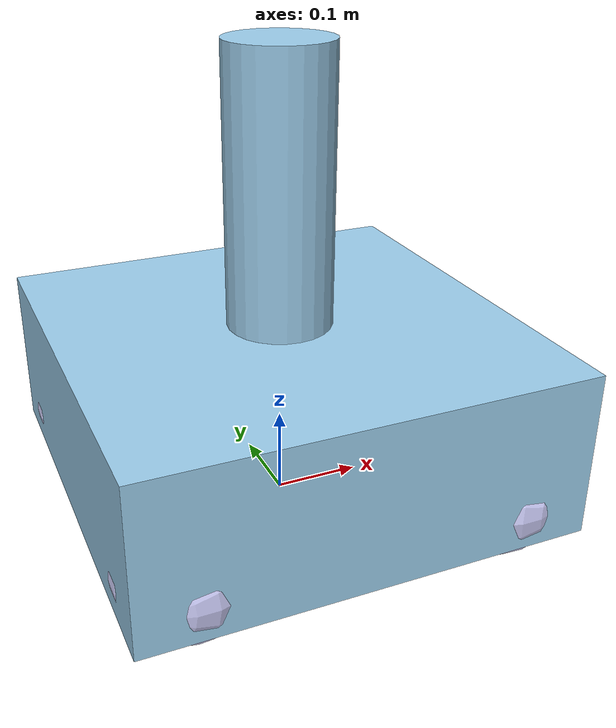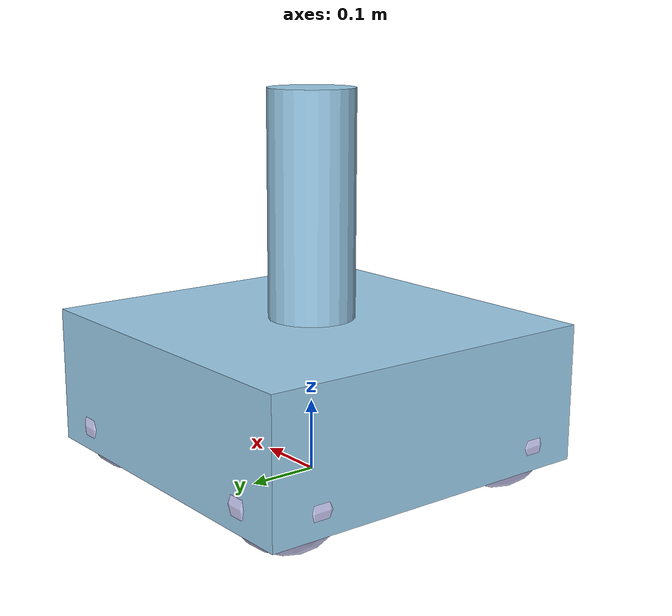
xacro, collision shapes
<?xml version="1.0"?>
<robot name="omni_robot" xmlns:xacro="http://www.ros.org/wiki/xacro">

  <xacro:arg name="lidar_hz" default="50"/>
  <xacro:arg name="lidar_h_samples" default="360"/>
  <xacro:arg name="lidar_v_samples" default="32"/>

  <xacro:include filename="$(find omni_sim_description)/urdf/chassis.urdf.xacro"/>

  <xacro:property name="lidar_tilt" value="${-25.0 * pi / 180.0}"/>
  <xacro:property name="lidar_z" value="0.2752"/>

  <xacro:macro name="mid360" params="frame topic x y yaw">
    <link name="${frame}"/>
    <joint name="base_link_to_${frame}" type="fixed">
      <parent link="base_link"/>
      <child link="${frame}"/>
      <origin xyz="${x} ${y} ${lidar_z}" rpy="0 ${lidar_tilt} ${yaw}"/>
    </joint>
    <gazebo reference="${frame}">
      <sensor name="${frame}_sensor" type="gpu_lidar">
        <topic>${topic}</topic>
        <gz_frame_id>${frame}</gz_frame_id>
        <update_rate>$(arg lidar_hz)</update_rate>
        <always_on>true</always_on>
        <visualize>false</visualize>
        <lidar>
          <scan>
            <horizontal>
              <samples>$(arg lidar_h_samples)</samples>
              <resolution>1</resolution>
              <min_angle>${-pi}</min_angle>
              <max_angle>${pi}</max_angle>
            </horizontal>
            <vertical>
              <samples>$(arg lidar_v_samples)</samples>
              <resolution>1</resolution>
              <min_angle>${-7.0 * pi / 180.0}</min_angle>
              <max_angle>${52.0 * pi / 180.0}</max_angle>
            </vertical>
          </scan>
          <range>
            <min>0.1</min>
            <max>40.0</max>
            <resolution>0.002</resolution>
          </range>
          <noise>
            <type>gaussian</type>
            <mean>0.0</mean>
            <stddev>0.015</stddev>
          </noise>
        </lidar>
      </sensor>
    </gazebo>
  </xacro:macro>

  <xacro:mid360 frame="livox_frame"   topic="/gz/livox_front_right" x="0.1435"  y="-0.1437" yaw="${0.75 * pi}"/>
  <xacro:mid360 frame="livox_frame_2" topic="/gz/livox_back_left"   x="-0.1435" y="0.1437"  yaw="${-0.25 * pi}"/>

  <!-- Mid360 内置 IMU (Livox 官方内部外参, 与 nav_ws 一致). 输出 m/s^2 (真机驱动输出 g) -->
  <link name="imu_link"/>
  <joint name="livox_to_imu" type="fixed">
    <parent link="livox_frame"/>
    <child link="imu_link"/>
    <origin xyz="0.011 0.02329 -0.04412" rpy="0 0 0"/>
  </joint>
  <gazebo reference="imu_link">
    <sensor name="mid360_imu" type="imu">
      <topic>/gz/livox_imu</topic>
      <gz_frame_id>imu_link</gz_frame_id>
      <update_rate>200</update_rate>
      <always_on>true</always_on>
      <imu>
        <angular_velocity>
          <x><noise type="gaussian"><mean>0</mean><stddev>0.002</stddev><bias_mean>0.0005</bias_mean><bias_stddev>0.0001</bias_stddev></noise></x>
          <y><noise type="gaussian"><mean>0</mean><stddev>0.002</stddev><bias_mean>0.0005</bias_mean><bias_stddev>0.0001</bias_stddev></noise></y>
          <z><noise type="gaussian"><mean>0</mean><stddev>0.002</stddev><bias_mean>0.0005</bias_mean><bias_stddev>0.0001</bias_stddev></noise></z>
        </angular_velocity>
        <linear_acceleration>
          <x><noise type="gaussian"><mean>0</mean><stddev>0.02</stddev><bias_mean>0.01</bias_mean><bias_stddev>0.001</bias_stddev></noise></x>
          <y><noise type="gaussian"><mean>0</mean><stddev>0.02</stddev><bias_mean>0.01</bias_mean><bias_stddev>0.001</bias_stddev></noise></y>
          <z><noise type="gaussian"><mean>0</mean><stddev>0.02</stddev><bias_mean>0.01</bias_mean><bias_stddev>0.001</bias_stddev></noise></z>
        </linear_acceleration>
      </imu>
    </sensor>
  </gazebo>

  <gazebo>
    <!-- 理想全向运动: 直接给底盘 body 速度 (vx, vy, wz). 轮速逆解见 hospital_sim/omni_wheel_kinematics.py -->
    <plugin filename="gz-sim-velocity-control-system" name="gz::sim::systems::VelocityControl">
      <topic>/gz/cmd_vel</topic>
    </plugin>
    <!-- 真值: world -> base_link, 用于评估 Point-LIO / 重定位误差 -->
    <plugin filename="gz-sim-odometry-publisher-system" name="gz::sim::systems::OdometryPublisher">
      <odom_frame>world</odom_frame>
      <robot_base_frame>base_link</robot_base_frame>
      <dimensions>3</dimensions>
      <odom_publish_frequency>50</odom_publish_frequency>
      <odom_topic>/gz/ground_truth</odom_topic>
      <tf_topic>/gz/ground_truth_tf</tf_topic>
    </plugin>
  </gazebo>

</robot>

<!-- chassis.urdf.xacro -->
<!-- AUTO-GENERATED by scripts/make_sim_chassis.py from nav_ws chassis.urdf -->
<robot xmlns:xacro="http://www.ros.org/wiki/xacro">
  <link name="base_link" />
  <joint name="base_joint" type="fixed">
    <origin xyz="0 0 0" rpy="0 0 3.141592653589793" />
    <parent link="base_link" />
    <child link="updownbase_urdf_asm" />
  </joint>
  <link name="updownbase_urdf_asm">
    <inertial>
      <origin xyz="-0.000723001 0.022141 0.146804" rpy="0 0 0" />
      <mass value="21.8643" />
      <inertia ixx="0.474266" ixy="0.0117404" ixz="-0.000542174" iyy="0.48894" iyz="0.00745325" izz="0.50382" />
    </inertial>
    <visual>
      <origin xyz="-0.00121192 0.000883883 -0.0167724" rpy="-5.01545e-45 -0 1.72499e-30" />
      <geometry>
        <mesh filename="package://omni_sim_description/meshes/4005.stl" />
      </geometry>
      <material name="4005_material">
        <color rgba="0.615686 0.811765 0.929412 1" />
      </material>
    </visual>
    <visual>
      <origin xyz="-1.47931e-11 -3.97571e-12 -0.0167724" rpy="-5.01545e-45 -0 1.72499e-30" />
      <geometry>
        <mesh filename="package://omni_sim_description/meshes/ultrasonic.stl" />
      </geometry>
      <material name="ultrasonic_material">
        <color rgba="0.768627 0.886275 0.952941 1" />
      </material>
    </visual>
    <visual>
      <origin xyz="-0.00121192 0.000883883 -0.0167724" rpy="-5.01545e-45 -0 1.72499e-30" />
      <geometry>
        <mesh filename="package://omni_sim_description/meshes/rs02.stl" />
      </geometry>
      <material name="rs02_material">
        <color rgba="0.301961 0.290196 0.262745 1" />
      </material>
    </visual>
    <visual>
      <origin xyz="-1.4793e-11 1.60544e-11 -0.0167724" rpy="8.68144e-11 -1.79174e-21 4.12774e-11" />
      <geometry>
        <mesh filename="package://omni_sim_description/meshes/batt_s_d.stl" />
      </geometry>
      <material name="batt_s_d_material">
        <color rgba="1 0.756863 0.054902 1" />
      </material>
    </visual>
    <visual>
      <origin xyz="-0.00121192 0.000883883 -0.0167724" rpy="-5.01545e-45 -0 1.72499e-30" />
      <geometry>
        <mesh filename="package://omni_sim_description/meshes/rs02__2.stl" />
      </geometry>
      <material name="rs02_2_material">
        <color rgba="0.301961 0.290196 0.262745 1" />
      </material>
    </visual>
    <visual>
      <origin xyz="-0.00121192 0.000883883 -0.0167724" rpy="-5.01545e-45 -0 1.72499e-30" />
      <geometry>
        <mesh filename="package://omni_sim_description/meshes/wheel_mot_con.stl" />
      </geometry>
      <material name="wheel_mot_con_material">
        <color rgba="0.768627 0.886275 0.952941 1" />
      </material>
    </visual>
    <visual>
      <origin xyz="-1.47932e-11 -3.97571e-12 -0.0169724" rpy="2.32171e-32 -0 2.77556e-17" />
      <geometry>
        <mesh filename="package://omni_sim_description/meshes/ld_b.stl" />
      </geometry>
      <material name="ld_b_material">
        <color rgba="0.917647 0.917647 0.917647 1" />
      </material>
    </visual>
    <visual>
      <origin xyz="-1.47944e-11 -3.97626e-12 -0.0169724" rpy="-9.26342e-16 8.88178e-16 2.63678e-16" />
      <geometry>
        <mesh filename="package://omni_sim_description/meshes/mid_360.stl" />
      </geometry>
      <material name="mid_360_material">
        <color rgba="0.768627 0.886275 0.952941 1" />
      </material>
    </visual>
    <visual>
      <origin xyz="-0.00121192 0.000883883 -0.0167724" rpy="-5.01545e-45 -0 1.72499e-30" />
      <geometry>
        <mesh filename="package://omni_sim_description/meshes/wheel_mot_stop.stl" />
      </geometry>
      <material name="wheel_mot_stop_material">
        <color rgba="0.615686 0.811765 0.929412 1" />
      </material>
    </visual>
    <visual>
      <origin xyz="-1.4793e-11 -3.97582e-12 -0.0167724" rpy="-1.06254e-31 -0 3.44509e-16" />
      <geometry>
        <mesh filename="package://omni_sim_description/meshes/ultrasonic__2.stl" />
      </geometry>
      <material name="ultrasonic_2_material">
        <color rgba="0.768627 0.886275 0.952941 1" />
      </material>
    </visual>
    <visual>
      <origin xyz="-0.00121192 0.000883883 -0.0167724" rpy="-5.01545e-45 -0 1.72499e-30" />
      <geometry>
        <mesh filename="package://omni_sim_description/meshes/wheel_mot_back.stl" />
      </geometry>
      <material name="wheel_mot_back_material">
        <color rgba="0.615686 0.811765 0.929412 1" />
      </material>
    </visual>
    <visual>
      <origin xyz="-0.00121192 0.000883883 -0.0167724" rpy="-5.01545e-45 -0 1.72499e-30" />
      <geometry>
        <mesh filename="package://omni_sim_description/meshes/wheel_mot_back__2.stl" />
      </geometry>
      <material name="wheel_mot_back_2_material">
        <color rgba="0.615686 0.811765 0.929412 1" />
      </material>
    </visual>
    <visual>
      <origin xyz="-1.47931e-11 -3.97571e-12 -0.0167724" rpy="-5.01545e-45 -0 1.72499e-30" />
      <geometry>
        <mesh filename="package://omni_sim_description/meshes/cahssis_s_d.stl" />
      </geometry>
      <material name="cahssis_s_d_material">
        <color rgba="0.87451 0.87451 0.87451 1" />
      </material>
    </visual>
    <visual>
      <origin xyz="-0.00121192 0.000883883 -0.0167724" rpy="-5.01545e-45 -0 1.72499e-30" />
      <geometry>
        <mesh filename="package://omni_sim_description/meshes/wheel_mot_base.stl" />
      </geometry>
      <material name="wheel_mot_base_material">
        <color rgba="0.615686 0.811765 0.929412 1" />
      </material>
    </visual>
    <visual>
      <origin xyz="-1.47932e-11 -3.97582e-12 -0.0169724" rpy="-5.01545e-45 -0 1.72499e-30" />
      <geometry>
        <mesh filename="package://omni_sim_description/meshes/cahssis_s_u.stl" />
      </geometry>
      <material name="cahssis_s_u_material">
        <color rgba="0.87451 0.87451 0.87451 1" />
      </material>
    </visual>
    <visual>
      <origin xyz="-0.00121192 0.000883883 -0.0167724" rpy="-5.01545e-45 -0 1.72499e-30" />
      <geometry>
        <mesh filename="package://omni_sim_description/meshes/wheel_mot_drv.stl" />
      </geometry>
      <material name="wheel_mot_drv_material">
        <color rgba="0.498039 0.498039 0.498039 1" />
      </material>
    </visual>
    <visual>
      <origin xyz="-0.00121192 0.000883883 -0.0167724" rpy="-5.01545e-45 -0 1.72499e-30" />
      <geometry>
        <mesh filename="package://omni_sim_description/meshes/wheel_mot_back__3.stl" />
      </geometry>
      <material name="wheel_mot_back_3_material">
        <color rgba="0.615686 0.811765 0.929412 1" />
      </material>
    </visual>
    <visual>
      <origin xyz="-0.00121192 0.000883883 -0.0167724" rpy="-5.01545e-45 -0 1.72499e-30" />
      <geometry>
        <mesh filename="package://omni_sim_description/meshes/rs02__3.stl" />
      </geometry>
      <material name="rs02_3_material">
        <color rgba="0.301961 0.290196 0.262745 1" />
      </material>
    </visual>
    <visual>
      <origin xyz="-0.00121192 0.000883883 -0.0167724" rpy="-5.01545e-45 -0 1.72499e-30" />
      <geometry>
        <mesh filename="package://omni_sim_description/meshes/wheel_mot_back__4.stl" />
      </geometry>
      <material name="wheel_mot_back_4_material">
        <color rgba="0.615686 0.811765 0.929412 1" />
      </material>
    </visual>
    <visual>
      <origin xyz="-0.00121192 0.000883883 -0.0167724" rpy="-5.01545e-45 -0 1.72499e-30" />
      <geometry>
        <mesh filename="package://omni_sim_description/meshes/wheel_mot_drv__2.stl" />
      </geometry>
      <material name="wheel_mot_drv_2_material">
        <color rgba="0.498039 0.498039 0.498039 1" />
      </material>
    </visual>
    <visual>
      <origin xyz="-0.00121192 0.000883883 -0.0167724" rpy="-5.01545e-45 -0 1.72499e-30" />
      <geometry>
        <mesh filename="package://omni_sim_description/meshes/batt_sm_r.stl" />
      </geometry>
      <material name="batt_sm_r_material">
        <color rgba="0.917647 0.917647 0.917647 1" />
      </material>
    </visual>
    <visual>
      <origin xyz="-1.76671e-11 6.07492e-12 -0.0167724" rpy="4.37526e-11 7.12765e-24 -2.06389e-11" />
      <geometry>
        <mesh filename="package://omni_sim_description/meshes/batt_s_d__2.stl" />
      </geometry>
      <material name="batt_s_d_2_material">
        <color rgba="1 0.756863 0.054902 1" />
      </material>
    </visual>
    <visual>
      <origin xyz="-0.00121192 0.000883883 -0.0167724" rpy="-5.01545e-45 -0 1.72499e-30" />
      <geometry>
        <mesh filename="package://omni_sim_description/meshes/wheel_mot_base__2.stl" />
      </geometry>
      <material name="wheel_mot_base_2_material">
        <color rgba="0.615686 0.811765 0.929412 1" />
      </material>
    </visual>
    <visual>
      <origin xyz="-1.47933e-11 -3.97571e-12 -0.0169724" rpy="2.32171e-32 -0 2.77556e-17" />
      <geometry>
        <mesh filename="package://omni_sim_description/meshes/mid_360__2.stl" />
      </geometry>
      <material name="mid_360_2_material">
        <color rgba="0.768627 0.886275 0.952941 1" />
      </material>
    </visual>
    <visual>
      <origin xyz="-0.00121192 0.000883883 -0.0167724" rpy="-5.01545e-45 -0 1.72499e-30" />
      <geometry>
        <mesh filename="package://omni_sim_description/meshes/rs02__4.stl" />
      </geometry>
      <material name="rs02_4_material">
        <color rgba="0.301961 0.290196 0.262745 1" />
      </material>
    </visual>
    <visual>
      <origin xyz="-0.00121192 0.000883883 -0.0167724" rpy="-5.01545e-45 -0 1.72499e-30" />
      <geometry>
        <mesh filename="package://omni_sim_description/meshes/wheel_mot_stop__2.stl" />
      </geometry>
      <material name="wheel_mot_stop_2_material">
        <color rgba="0.615686 0.811765 0.929412 1" />
      </material>
    </visual>
    <visual>
      <origin xyz="-0.00121192 -0.00411612 -0.0197724" rpy="-2.07752e-16 -3.02916e-17 1.71917e-30" />
      <geometry>
        <mesh filename="package://omni_sim_description/meshes/motor.stl" />
      </geometry>
      <material name="motor_material">
        <color rgba="0.615686 0.811765 0.929412 1" />
      </material>
    </visual>
    <visual>
      <origin xyz="-1.4793e-11 -3.97582e-12 -0.0167724" rpy="-1.6226e-31 -0 2.77556e-16" />
      <geometry>
        <mesh filename="package://omni_sim_description/meshes/ultrasonic__3.stl" />
      </geometry>
      <material name="ultrasonic_3_material">
        <color rgba="0.768627 0.886275 0.952941 1" />
      </material>
    </visual>
    <visual>
      <origin xyz="-1.4793e-11 -3.97582e-12 -0.0167724" rpy="-1.6226e-31 -0 2.77556e-16" />
      <geometry>
        <mesh filename="package://omni_sim_description/meshes/ultrasonic__4.stl" />
      </geometry>
      <material name="ultrasonic_4_material">
        <color rgba="0.768627 0.886275 0.952941 1" />
      </material>
    </visual>
    <visual>
      <origin xyz="-0.00121192 0.000883883 -0.0167724" rpy="-5.01545e-45 -0 1.72499e-30" />
      <geometry>
        <mesh filename="package://omni_sim_description/meshes/wheel_mot_con__2.stl" />
      </geometry>
      <material name="wheel_mot_con_2_material">
        <color rgba="0.768627 0.886275 0.952941 1" />
      </material>
    </visual>
    <visual>
      <origin xyz="0.222567 0.64821 -0.294546" rpy="-2.13708e-17 2.90753e-15 1.66285e-30" />
      <geometry>
        <mesh filename="package://omni_sim_description/meshes/njtc01_t002_mid_tube.stl" />
      </geometry>
      <material name="njtc01_t002_mid_tube_material">
        <color rgba="0.792157 0.819608 0.933333 1" />
      </material>
    </visual>
    <visual>
      <origin xyz="-0.00121192 0.000883883 -0.0167724" rpy="-5.01545e-45 -0 1.72499e-30" />
      <geometry>
        <mesh filename="package://omni_sim_description/meshes/4005__2.stl" />
      </geometry>
      <material name="4005_2_material">
        <color rgba="0.615686 0.811765 0.929412 1" />
      </material>
    </visual>
    <visual>
      <origin xyz="-0.00121192 0.000883883 -0.0167724" rpy="-5.01545e-45 -0 1.72499e-30" />
      <geometry>
        <mesh filename="package://omni_sim_description/meshes/chassis_base.stl" />
      </geometry>
      <material name="chassis_base_material">
        <color rgba="0.615686 0.811765 0.929412 1" />
      </material>
    </visual>
    <visual>
      <origin xyz="-1.4793e-11 -3.9756e-12 -0.0167724" rpy="-5.01545e-45 -0 1.72499e-30" />
      <geometry>
        <mesh filename="package://omni_sim_description/meshes/ultrasonic__5.stl" />
      </geometry>
      <material name="ultrasonic_5_material">
        <color rgba="0.768627 0.886275 0.952941 1" />
      </material>
    </visual>
    <visual>
      <origin xyz="-0.00121192 0.000883883 -0.0167724" rpy="-5.01545e-45 -0 1.72499e-30" />
      <geometry>
        <mesh filename="package://omni_sim_description/meshes/wheel_mot_con__3.stl" />
      </geometry>
      <material name="wheel_mot_con_3_material">
        <color rgba="0.768627 0.886275 0.952941 1" />
      </material>
    </visual>
    <visual>
      <origin xyz="-0.00121192 0.000883883 -0.0167724" rpy="-5.01545e-45 -0 1.72499e-30" />
      <geometry>
        <mesh filename="package://omni_sim_description/meshes/4005__3.stl" />
      </geometry>
      <material name="4005_3_material">
        <color rgba="0.615686 0.811765 0.929412 1" />
      </material>
    </visual>
    <visual>
      <origin xyz="-0.00121192 0.000883883 -0.0167724" rpy="-5.01545e-45 -0 1.72499e-30" />
      <geometry>
        <mesh filename="package://omni_sim_description/meshes/wheel_mot_stop__3.stl" />
      </geometry>
      <material name="wheel_mot_stop_3_material">
        <color rgba="0.615686 0.811765 0.929412 1" />
      </material>
    </visual>
    <visual>
      <origin xyz="-0.00121192 0.000883883 -0.0167724" rpy="-5.01545e-45 -0 1.72499e-30" />
      <geometry>
        <mesh filename="package://omni_sim_description/meshes/wheel_mot_base__3.stl" />
      </geometry>
      <material name="wheel_mot_base_3_material">
        <color rgba="0.615686 0.811765 0.929412 1" />
      </material>
    </visual>
    <visual>
      <origin xyz="-0.00121192 0.000883883 -0.0152724" rpy="-5.01545e-45 -0 1.72499e-30" />
      <geometry>
        <mesh filename="package://omni_sim_description/meshes/chassis_b.stl" />
      </geometry>
      <material name="chassis_b_material">
        <color rgba="0.298039 0.298039 0.298039 1" />
      </material>
    </visual>
    <visual>
      <origin xyz="-1.7667e-11 6.07492e-12 -0.0167724" rpy="4.37526e-11 7.12765e-24 -2.06389e-11" />
      <geometry>
        <mesh filename="package://omni_sim_description/meshes/batt_s_u.stl" />
      </geometry>
      <material name="batt_s_u_material">
        <color rgba="0.615686 0.811765 0.929412 1" />
      </material>
    </visual>
    <visual>
      <origin xyz="-0.00121192 0.000883883 -0.0167724" rpy="-5.01545e-45 -0 1.72499e-30" />
      <geometry>
        <mesh filename="package://omni_sim_description/meshes/wheel_mot_drv__3.stl" />
      </geometry>
      <material name="wheel_mot_drv_3_material">
        <color rgba="0.498039 0.498039 0.498039 1" />
      </material>
    </visual>
    <visual>
      <origin xyz="-0.00121192 0.000883883 -0.0167724" rpy="-5.01545e-45 -0 1.72499e-30" />
      <geometry>
        <mesh filename="package://omni_sim_description/meshes/wheel_mot_con__4.stl" />
      </geometry>
      <material name="wheel_mot_con_4_material">
        <color rgba="0.768627 0.886275 0.952941 1" />
      </material>
    </visual>
    <visual>
      <origin xyz="-1.47931e-11 1.60544e-11 -0.0167724" rpy="8.68144e-11 -1.79174e-21 4.12774e-11" />
      <geometry>
        <mesh filename="package://omni_sim_description/meshes/batt_s_u__2.stl" />
      </geometry>
      <material name="batt_s_u_2_material">
        <color rgba="0.615686 0.811765 0.929412 1" />
      </material>
    </visual>
    <visual>
      <origin xyz="-0.00121192 0.000883883 -0.0167724" rpy="-5.01545e-45 -0 1.72499e-30" />
      <geometry>
        <mesh filename="package://omni_sim_description/meshes/batt_sm_l.stl" />
      </geometry>
      <material name="batt_sm_l_material">
        <color rgba="0.917647 0.917647 0.917647 1" />
      </material>
    </visual>
    <visual>
      <origin xyz="-0.00121192 0.000883883 -0.0167724" rpy="-5.01545e-45 -0 1.72499e-30" />
      <geometry>
        <mesh filename="package://omni_sim_description/meshes/wheel_mot_base__4.stl" />
      </geometry>
      <material name="wheel_mot_base_4_material">
        <color rgba="0.615686 0.811765 0.929412 1" />
      </material>
    </visual>
    <visual>
      <origin xyz="-0.00121192 0.000883883 -0.0167724" rpy="-5.01545e-45 -0 1.72499e-30" />
      <geometry>
        <mesh filename="package://omni_sim_description/meshes/4005__4.stl" />
      </geometry>
      <material name="4005_4_material">
        <color rgba="0.615686 0.811765 0.929412 1" />
      </material>
    </visual>
    <visual>
      <origin xyz="-0.00121192 0.000883883 -0.0167724" rpy="-5.01545e-45 -0 1.72499e-30" />
      <geometry>
        <mesh filename="package://omni_sim_description/meshes/wheel_mot_stop__4.stl" />
      </geometry>
      <material name="wheel_mot_stop_4_material">
        <color rgba="0.615686 0.811765 0.929412 1" />
      </material>
    </visual>
    <visual>
      <origin xyz="-1.47932e-11 -3.97582e-12 -0.0169724" rpy="-1.63064e-16 5.55112e-17 5.55112e-17" />
      <geometry>
        <mesh filename="package://omni_sim_description/meshes/ld_b__2.stl" />
      </geometry>
      <material name="ld_b_2_material">
        <color rgba="0.917647 0.917647 0.917647 1" />
      </material>
    </visual>
    <visual>
      <origin xyz="-1.4793e-11 -3.97571e-12 -0.0167724" rpy="-8.3297e-32 -0 -9.95799e-17" />
      <geometry>
        <mesh filename="package://omni_sim_description/meshes/ultrasonic__6.stl" />
      </geometry>
      <material name="ultrasonic_6_material">
        <color rgba="0.768627 0.886275 0.952941 1" />
      </material>
    </visual>
    <visual>
      <origin xyz="0.222567 0.64821 0.010454" rpy="-6.45838e-45 -0 1.72499e-30" />
      <geometry>
        <mesh filename="package://omni_sim_description/meshes/njtc01_t003_outer_tube.stl" />
      </geometry>
      <material name="njtc01_t003_outer_tube_material">
        <color rgba="0.792157 0.819608 0.933333 1" />
      </material>
    </visual>
    <visual>
      <origin xyz="-0.00121192 0.000883883 -0.0167724" rpy="-5.01545e-45 -0 1.72499e-30" />
      <geometry>
        <mesh filename="package://omni_sim_description/meshes/wheel_mot_drv__4.stl" />
      </geometry>
      <material name="wheel_mot_drv_4_material">
        <color rgba="0.498039 0.498039 0.498039 1" />
      </material>
    </visual>
    <collision name="chassis_box">
      <origin xyz="0 0 0.125" />
      <geometry>
        <box size="0.50 0.50 0.19" />
      </geometry>
    </collision>
    <collision name="pole">
      <origin xyz="0 0 0.33" />
      <geometry>
        <cylinder radius="0.06" length="0.40" />
      </geometry>
    </collision>
  </link>
  <link name="ow150_sk_tt_l_00_omni6in_ad">
    <inertial>
      <origin xyz="-1.54992e-07 -3.552e-08 0.0021919" rpy="0 0 0" />
      <mass value="0.9" />
      <inertia ixx="0.00150934" ixy="-6.21923e-09" ixz="2.67456e-10" iyy="0.00150933" iyz="-8.66274e-10" izz="0.00281989" />
    </inertial>
    <visual>
      <origin xyz="5.32614e-17 -4.16334e-17 0.0159986" rpy="-1.5708 -1.01465e-17 4.09935e-15" />
      <geometry>
        <mesh filename="package://omni_sim_description/meshes/ow150_sk_tt_l_00_omni6in_ad.stl" />
      </geometry>
      <material name="ow150_sk_tt_l_00_omni6in_ad_material">
        <color rgba="0.823529 0.823529 1 1" />
      </material>
    </visual>
    <collision name="wheel">
      <geometry>
        <sphere radius="0.075" />
      </geometry>
    </collision>
  </link>
  <joint name="wheel_rear_left" type="continuous">
    <origin xyz="0.177071 -0.177399 0.0632276" rpy="1.5708 3.54646e-45 0.785398" />
    <parent link="updownbase_urdf_asm" />
    <child link="ow150_sk_tt_l_00_omni6in_ad" />
    <axis xyz="0 0 1" />
    <limit effort="10" velocity="10" />
  </joint>
  <link name="ow150_sk_tt_l_00_omni6in_ad_2">
    <inertial>
      <origin xyz="-1.54992e-07 -3.552e-08 0.0021919" rpy="0 0 0" />
      <mass value="0.9" />
      <inertia ixx="0.00150934" ixy="-6.21923e-09" ixz="2.67456e-10" iyy="0.00150933" iyz="-8.66274e-10" izz="0.00281989" />
    </inertial>
    <visual>
      <origin xyz="-2.14672e-17 0 0.0159986" rpy="-1.5708 1.01465e-17 -1.73341e-15" />
      <geometry>
        <mesh filename="package://omni_sim_description/meshes/ow150_sk_tt_l_00_omni6in_ad.stl" />
      </geometry>
      <material name="ow150_sk_tt_l_00_omni6in_ad_2_material">
        <color rgba="0.823529 0.823529 1 1" />
      </material>
    </visual>
    <collision name="wheel">
      <geometry>
        <sphere radius="0.075" />
      </geometry>
    </collision>
  </link>
  <joint name="wheel_front_left" type="continuous">
    <origin xyz="-0.179494 -0.177399 0.0632276" rpy="1.5708 -3.54646e-45 -0.785398" />
    <parent link="updownbase_urdf_asm" />
    <child link="ow150_sk_tt_l_00_omni6in_ad_2" />
    <axis xyz="0 0 1" />
    <limit effort="10" velocity="10" />
  </joint>
  <link name="ow150_sk_tt_l_00_omni6in_ad_3">
    <inertial>
      <origin xyz="-1.54992e-07 3.552e-08 -0.0021919" rpy="0 0 0" />
      <mass value="0.9" />
      <inertia ixx="0.00150934" ixy="6.21923e-09" ixz="-2.67456e-10" iyy="0.00150933" iyz="-8.66274e-10" izz="0.00281989" />
    </inertial>
    <visual>
      <origin xyz="-2.9924e-17 1.38778e-17 -0.0159986" rpy="1.5708 -1.01465e-17 1.73341e-15" />
      <geometry>
        <mesh filename="package://omni_sim_description/meshes/ow150_sk_tt_l_00_omni6in_ad.stl" />
      </geometry>
      <material name="ow150_sk_tt_l_00_omni6in_ad_3_material">
        <color rgba="0.823529 0.823529 1 1" />
      </material>
    </visual>
    <collision name="wheel">
      <geometry>
        <sphere radius="0.075" />
      </geometry>
    </collision>
  </link>
  <joint name="wheel_rear_right" type="continuous">
    <origin xyz="0.177071 0.179166 0.0632276" rpy="-1.5708 -3.54646e-45 -0.785398" />
    <parent link="updownbase_urdf_asm" />
    <child link="ow150_sk_tt_l_00_omni6in_ad_3" />
    <axis xyz="0 0 1" />
    <limit effort="10" velocity="10" />
  </joint>
  <link name="ow150_sk_tt_l_00_omni6in_ad_4">
    <inertial>
      <origin xyz="-1.54992e-07 3.552e-08 -0.0021919" rpy="0 0 0" />
      <mass value="0.9" />
      <inertia ixx="0.00150934" ixy="6.21923e-09" ixz="-2.67456e-10" iyy="0.00150933" iyz="-8.66274e-10" izz="0.00281989" />
    </inertial>
    <visual>
      <origin xyz="2.61022e-17 4.16334e-17 -0.0159986" rpy="1.5708 1.01465e-17 -4.09935e-15" />
      <geometry>
        <mesh filename="package://omni_sim_description/meshes/ow150_sk_tt_l_00_omni6in_ad.stl" />
      </geometry>
      <material name="ow150_sk_tt_l_00_omni6in_ad_4_material">
        <color rgba="0.823529 0.823529 1 1" />
      </material>
    </visual>
    <collision name="wheel">
      <geometry>
        <sphere radius="0.075" />
      </geometry>
    </collision>
  </link>
  <joint name="wheel_front_right" type="continuous">
    <origin xyz="-0.179494 0.179166 0.0632276" rpy="-1.5708 3.54646e-45 0.785398" />
    <parent link="updownbase_urdf_asm" />
    <child link="ow150_sk_tt_l_00_omni6in_ad_4" />
    <axis xyz="0 0 1" />
    <limit effort="10" velocity="10" />
  </joint>
</robot>
